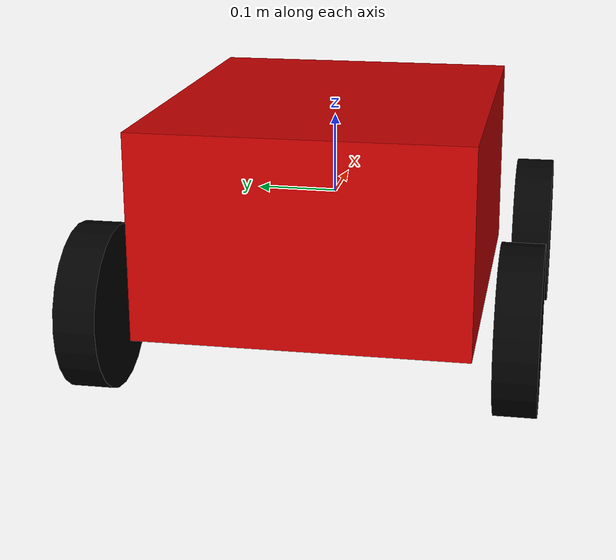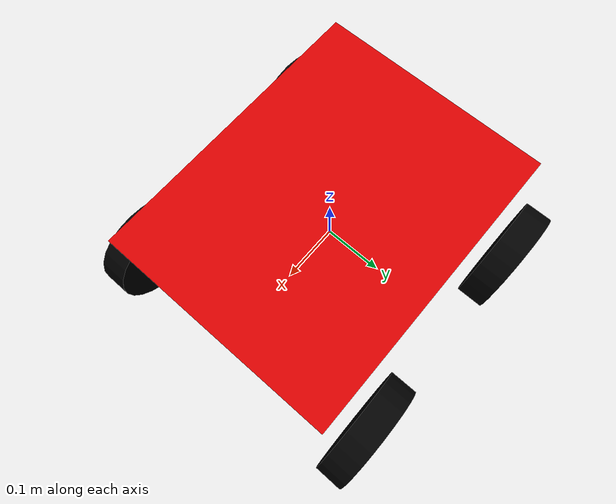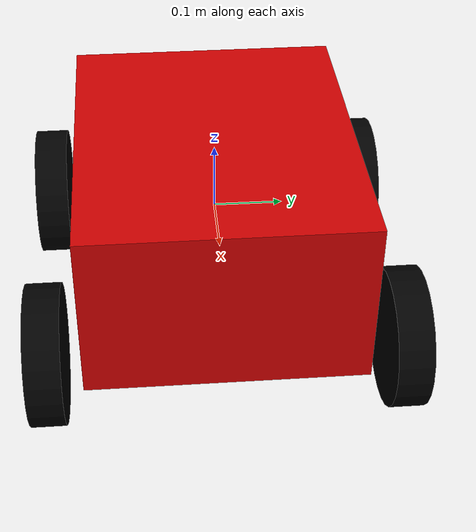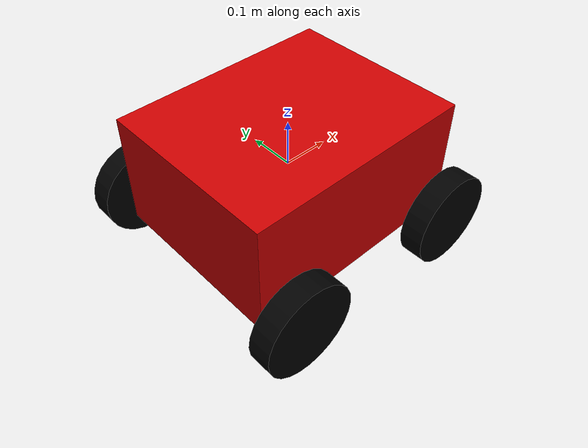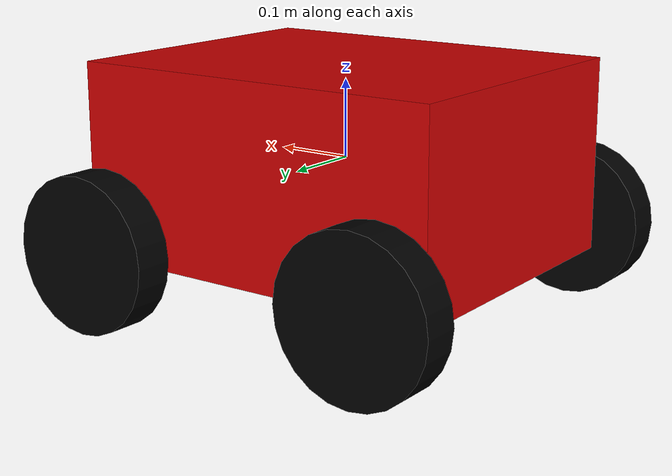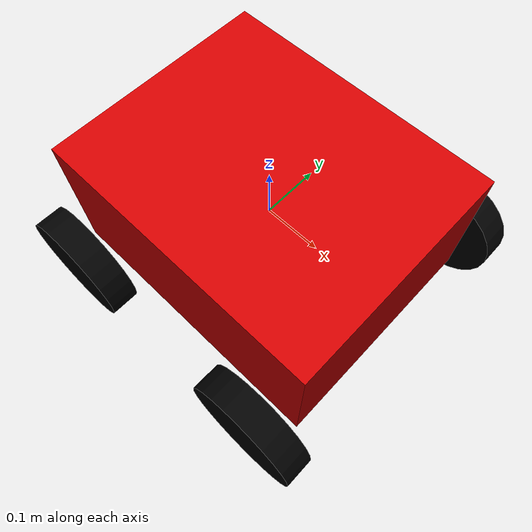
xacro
<?xml version="1.0"?>

<robot
  name="pioneer3at"
  xmlns:xacro="http://www.ros.org/wiki/xacro">

  <!-- ARGUMENTS -->

  <xacro:arg name="robot_namespace" default="p3at_sim"/>

  <!-- MATERIALS -->

  <material name="red">
    <color rgba="0.8 0.0 0.0 1.0"/>
  </material>

  <material name="black">
    <color rgba="0.0 0.0 0.0 1.0"/>
  </material>

  <!-- BASE -->

  <link name="base_link">

    <inertial>
      <mass value="14.0"/>
      <origin xyz="0 0 0"/>
      <inertia
        ixx="0.1"
        ixy="0.0"
        ixz="0.0"
        iyy="0.1"
        iyz="0.0"
        izz="0.1"/>
    </inertial>

    <visual>
      <geometry>
        <box size="0.50 0.40 0.25"/>
      </geometry>

      <material name="red"/>
    </visual>

    <collision>
      <geometry>
        <box size="0.50 0.40 0.25"/>
      </geometry>
    </collision>

  </link>

  <!-- WHEELS -->

  <xacro:macro name="wheel_link" params="name">

    <link name="${name}">

      <inertial>
        <mass value="0.5"/>
        <origin xyz="0 0 0"/>

        <inertia
          ixx="0.001"
          ixy="0.0"
          ixz="0.0"
          iyy="0.001"
          iyz="0.0"
          izz="0.001"/>
      </inertial>

      <visual>
        <geometry>
          <cylinder radius="0.1" length="0.05"/>
        </geometry>

        <material name="black"/>
      </visual>

      <collision>
        <geometry>
          <cylinder radius="0.1" length="0.05"/>
        </geometry>
      </collision>

    </link>

  </xacro:macro>

  <xacro:wheel_link name="left_front_wheel"/>
  <xacro:wheel_link name="right_front_wheel"/>
  <xacro:wheel_link name="left_rear_wheel"/>
  <xacro:wheel_link name="right_rear_wheel"/>

  <!-- JOINTS -->

  <joint name="left_front_joint" type="continuous">
    <parent link="base_link"/>
    <child link="left_front_wheel"/>
    <origin xyz="0.20 0.25 -0.10" rpy="1.5707 0 0"/>
    <axis xyz="0 0 1"/>
  </joint>

  <joint name="right_front_joint" type="continuous">
    <parent link="base_link"/>
    <child link="right_front_wheel"/>
    <origin xyz="0.20 -0.25 -0.10" rpy="1.5707 0 0"/>
    <axis xyz="0 0 1"/>
  </joint>

  <joint name="left_rear_joint" type="continuous">
    <parent link="base_link"/>
    <child link="left_rear_wheel"/>
    <origin xyz="-0.20 0.25 -0.10" rpy="1.5707 0 0"/>
    <axis xyz="0 0 1"/>
  </joint>

  <joint name="right_rear_joint" type="continuous">
    <parent link="base_link"/>
    <child link="right_rear_wheel"/>
    <origin xyz="-0.20 -0.25 -0.10" rpy="1.5707 0 0"/>
    <axis xyz="0 0 1"/>
  </joint>

  <!-- GAZEBO PLUGIN -->

  <gazebo>
    <plugin
      name="skid_steer_drive_controller"
      filename="libgazebo_ros_skid_steer_drive.so">

      <robotNamespace>/$(arg robot_namespace)</robotNamespace>

      <updateRate>50.0</updateRate>

      <leftFrontJoint>left_front_joint</leftFrontJoint>
      <rightFrontJoint>right_front_joint</rightFrontJoint>

      <leftRearJoint>left_rear_joint</leftRearJoint>
      <rightRearJoint>right_rear_joint</rightRearJoint>

      <wheelSeparation>0.5</wheelSeparation>
      <wheelDiameter>0.2</wheelDiameter>

      <torque>20</torque>

      <robotBaseFrame>base_link</robotBaseFrame>

      <commandTopic>cmd_vel</commandTopic>
      <odometryTopic>odom</odometryTopic>

      <odometryFrame>odom</odometryFrame>

      <broadcastTF>true</broadcastTF>

      <covariance_x>0.0001</covariance_x>
      <covariance_y>0.0001</covariance_y>
      <covariance_yaw>0.01</covariance_yaw>

    </plugin>
  </gazebo>

</robot>
